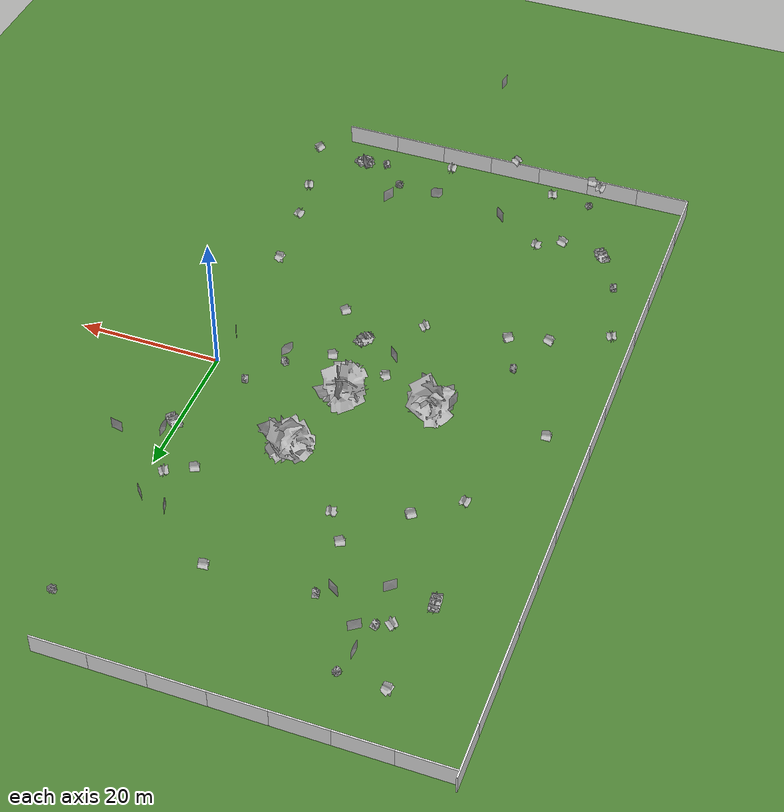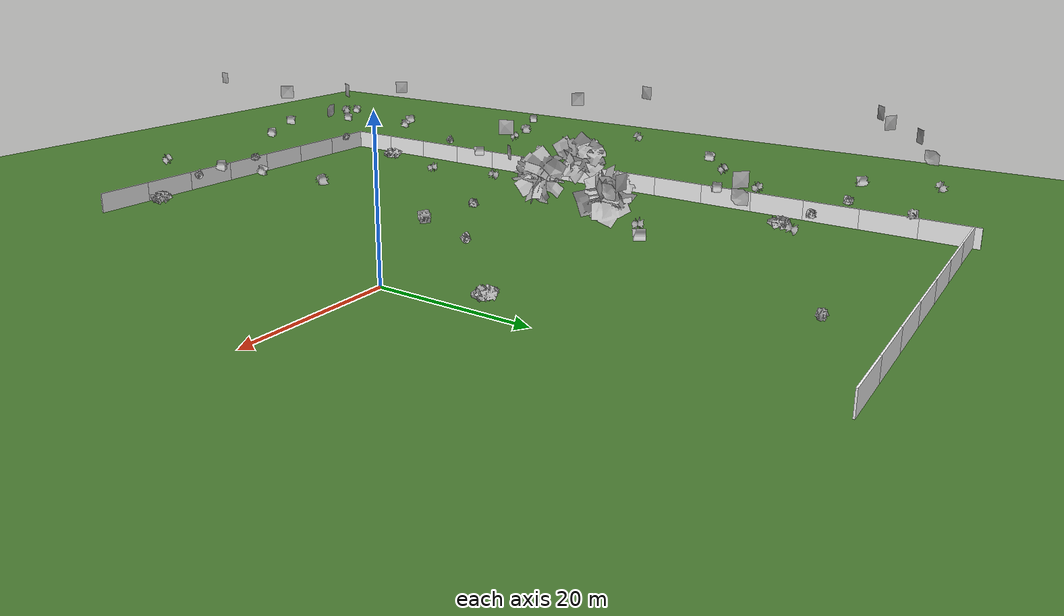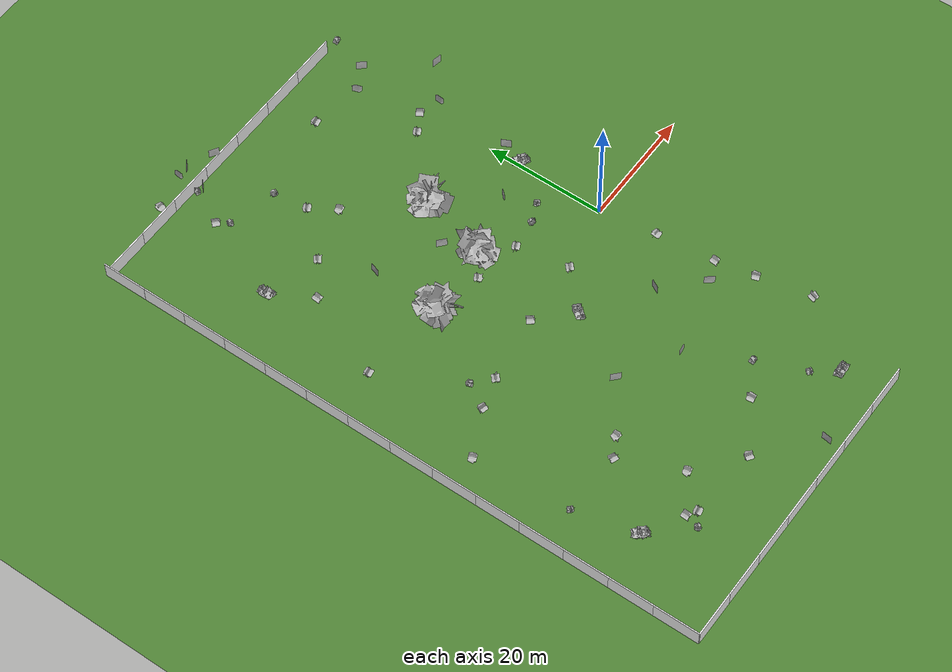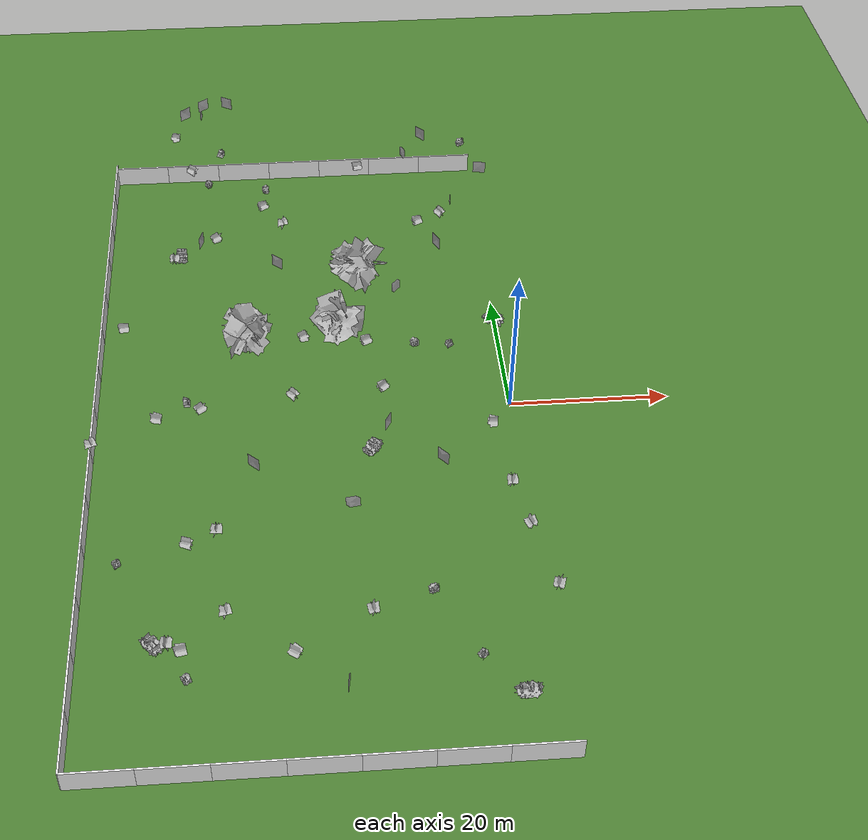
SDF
<sdf version="1.9">
 <world name="plant_forest">
  <model name="ground_plane">
   <static>true</static>
   <link name="link">
    <collision name="collision">
     <geometry><plane><normal>0 0 1</normal><size>110 110</size></plane></geometry>
    </collision>
    <visual name="visual">
     <geometry><plane><normal>0 0 1</normal><size>110 110</size></plane></geometry>
     <material>
      <ambient>0.3 0.5 0.2 1</ambient>
      <diffuse>0.3 0.5 0.2 1</diffuse>
      <specular>0.1 0.1 0.1 1</specular>
     </material>
     <plugin filename="ignition-gazebo-label-system" name="ignition::gazebo::systems::Label">
      <label>1</label>
     </plugin>
    </visual>
   </link>
  </model>
  <include>
   <name>tree_26</name>
   <uri>model://tree_01_2</uri>
   <pose>-11.0623 9.2053 0 0 0 2.9408</pose>
   <static>true</static>
  </include>
  <include>
   <name>tree_37</name>
   <uri>model://tree_01_2</uri>
   <pose>-39.7773 -1.3449 0 0 0 0.4349</pose>
   <static>true</static>
  </include>
  <include>
   <name>tree_43</name>
   <uri>model://tree_01_2</uri>
   <pose>-15.5438 8.4776 0 0 0 1.4459</pose>
   <static>true</static>
  </include>
  <include>
   <name>bush_3</name>
   <uri>model://bush_02</uri>
   <pose>-41.4220 -41.4758 0 0 0 5.4150</pose>
   <static>true</static>
  </include>
  <include>
   <name>bush_9</name>
   <uri>model://bush_01</uri>
   <pose>-4.0046 47.8516 0 0 0 6.2587</pose>
   <static>true</static>
  </include>
  <include>
   <name>bush_12</name>
   <uri>model://bush_02</uri>
   <pose>-5.9343 4.1489 0 0 0 1.9008</pose>
   <static>true</static>
  </include>
  <include>
   <name>bush_18</name>
   <uri>model://bush_01</uri>
   <pose>-39.1393 -7.3367 0 0 0 1.7384</pose>
   <static>true</static>
  </include>
  <include>
   <name>bush_19</name>
   <uri>model://bush_01</uri>
   <pose>-15.9786 -35.4413 0 0 0 6.1563</pose>
   <static>true</static>
  </include>
  <include>
   <name>bush_21</name>
   <uri>model://bush_01</uri>
   <pose>-37.2601 42.7249 0 0 0 4.3418</pose>
   <static>true</static>
  </include>
  <include>
   <name>bush_23</name>
   <uri>model://bush_02</uri>
   <pose>-6.7405 -43.9844 0 0 0 2.2912</pose>
   <static>true</static>
  </include>
  <include>
   <name>bush_25</name>
   <uri>model://bush_01</uri>
   <pose>-14.0469 5.7488 0 0 0 5.4960</pose>
   <static>true</static>
  </include>
  <include>
   <name>bush_28</name>
   <uri>model://bush_01</uri>
   <pose>-30.7814 40.7508 0 0 0 4.9159</pose>
   <static>true</static>
  </include>
  <include>
   <name>bush_33</name>
   <uri>model://bush_02</uri>
   <pose>-45.7282 -29.4595 0 0 0 2.0625</pose>
   <static>true</static>
  </include>
  <include>
   <name>bush_36</name>
   <uri>model://bush_01</uri>
   <pose>-36.9272 45.1585 0 0 0 1.1220</pose>
   <static>true</static>
  </include>
  <include>
   <name>flowers_5</name>
   <uri>model://flowers_03</uri>
   <pose>-9.0168 32.0376 0 0 0 1.9093</pose>
   <static>true</static>
  </include>
  <include>
   <name>flowers_9</name>
   <uri>model://flowers_03</uri>
   <pose>-39.0348 43.3920 0 0 0 1.4757</pose>
   <static>true</static>
  </include>
  <include>
   <name>flowers_10</name>
   <uri>model://flowers_03</uri>
   <pose>-26.4345 -28.8835 0 0 0 0.1535</pose>
   <static>true</static>
  </include>
  <include>
   <name>flowers_22</name>
   <uri>model://flowers_03</uri>
   <pose>-5.7722 20.5003 0 0 0 1.4734</pose>
   <static>true</static>
  </include>
  <include>
   <name>flowers_23</name>
   <uri>model://flowers_03</uri>
   <pose>-17.3079 3.8546 0 0 0 0.8694</pose>
   <static>true</static>
  </include>
  <include>
   <name>grass_0</name>
   <uri>model://grass_01</uri>
   <pose>-1.1300 -21.7982 0 0 0 3.0514</pose>
   <static>true</static>
  </include>
  <include>
   <name>grass_1</name>
   <uri>model://grass_02</uri>
   <pose>-15.7316 17.1976 0 0 0 2.5404</pose>
   <static>true</static>
  </include>
  <include>
   <name>grass_3</name>
   <uri>model://grass_03</uri>
   <pose>-45.4112 -10.1741 0 0 0 3.5462</pose>
   <static>true</static>
  </include>
  <include>
   <name>grass_4</name>
   <uri>model://grass_01</uri>
   <pose>-39.9410 -6.8532 0 0 0 5.4466</pose>
   <static>true</static>
  </include>
  <include>
   <name>grass_5</name>
   <uri>model://grass_01</uri>
   <pose>-43.1727 -11.6060 0 0 0 1.3299</pose>
   <static>true</static>
  </include>
  <include>
   <name>grass_6</name>
   <uri>model://grass_02</uri>
   <pose>-15.5999 36.4454 0 0 0 1.7483</pose>
   <static>true</static>
  </include>
  <include>
   <name>grass_7</name>
   <uri>model://grass_02</uri>
   <pose>-23.7819 -40.1370 0 0 0 0.1218</pose>
   <static>true</static>
  </include>
  <include>
   <name>grass_8</name>
   <uri>model://grass_03</uri>
   <pose>-42.9998 43.3843 0 0 0 1.4088</pose>
   <static>true</static>
  </include>
  <include>
   <name>grass_10</name>
   <uri>model://grass_01</uri>
   <pose>-28.8614 -46.0435 0 0 0 0.9574</pose>
   <static>true</static>
  </include>
  <include>
   <name>grass_11</name>
   <uri>model://grass_01</uri>
   <pose>-2.5381 -37.0186 0 0 0 5.9549</pose>
   <static>true</static>
  </include>
  <include>
   <name>grass_16</name>
   <uri>model://grass_03</uri>
   <pose>-28.9603 8.8414 0 0 0 5.2186</pose>
   <static>true</static>
  </include>
  <include>
   <name>grass_17</name>
   <uri>model://grass_01</uri>
   <pose>-38.2175 26.1582 0 0 0 5.3425</pose>
   <static>true</static>
  </include>
  <include>
   <name>grass_19</name>
   <uri>model://grass_01</uri>
   <pose>-14.6684 -6.8757 0 0 0 2.3284</pose>
   <static>true</static>
  </include>
  <include>
   <name>grass_21</name>
   <uri>model://grass_02</uri>
   <pose>-37.8683 44.2356 0 0 0 3.9935</pose>
   <static>true</static>
  </include>
  <include>
   <name>grass_23</name>
   <uri>model://grass_03</uri>
   <pose>-22.0721 29.5871 0 0 0 3.3814</pose>
   <static>true</static>
  </include>
  <include>
   <name>grass_24</name>
   <uri>model://grass_02</uri>
   <pose>-3.3721 31.2705 0 0 0 3.7226</pose>
   <static>true</static>
  </include>
  <include>
   <name>grass_26</name>
   <uri>model://grass_02</uri>
   <pose>-24.5891 -3.3880 0 0 0 3.8348</pose>
   <static>true</static>
  </include>
  <include>
   <name>grass_27</name>
   <uri>model://grass_02</uri>
   <pose>-15.7059 -0.5466 0 0 0 2.0421</pose>
   <static>true</static>
  </include>
  <include>
   <name>grass_28</name>
   <uri>model://grass_02</uri>
   <pose>-27.6365 28.5919 0 0 0 2.1384</pose>
   <static>true</static>
  </include>
  <include>
   <name>grass_30</name>
   <uri>model://grass_01</uri>
   <pose>-39.7812 21.1272 0 0 0 3.0698</pose>
   <static>true</static>
  </include>
  <include>
   <name>grass_32</name>
   <uri>model://grass_01</uri>
   <pose>-39.0669 -26.7267 0 0 0 4.3466</pose>
   <static>true</static>
  </include>
  <include>
   <name>grass_34</name>
   <uri>model://grass_02</uri>
   <pose>-7.1516 23.6098 0 0 0 2.0784</pose>
   <static>true</static>
  </include>
  <include>
   <name>grass_35</name>
   <uri>model://grass_03</uri>
   <pose>-4.4405 -18.5642 0 0 0 1.4485</pose>
   <static>true</static>
  </include>
  <include>
   <name>grass_36</name>
   <uri>model://grass_03</uri>
   <pose>-29.5119 -36.5227 0 0 0 3.3669</pose>
   <static>true</static>
  </include>
  <include>
   <name>grass_37</name>
   <uri>model://grass_03</uri>
   <pose>-30.2256 -27.2271 0 0 0 3.0423</pose>
   <static>true</static>
  </include>
  <include>
   <name>grass_40</name>
   <uri>model://grass_02</uri>
   <pose>-46.6418 3.2770 0 0 0 1.7235</pose>
   <static>true</static>
  </include>
  <include>
   <name>grass_42</name>
   <uri>model://grass_02</uri>
   <pose>-38.1516 -46.8225 0 0 0 1.7866</pose>
   <static>true</static>
  </include>
  <include>
   <name>grass_43</name>
   <uri>model://grass_02</uri>
   <pose>-5.7150 -30.3011 0 0 0 0.3228</pose>
   <static>true</static>
  </include>
  <include>
   <name>grass_44</name>
   <uri>model://grass_02</uri>
   <pose>-37.0476 -41.7270 0 0 0 3.0897</pose>
   <static>true</static>
  </include>
  <include>
   <name>clover_0</name>
   <uri>model://clover_05</uri>
   <pose>-42.2179 44.1704 0 0 0 0.6235</pose>
   <static>true</static>
  </include>
  <include>
   <name>clover_9</name>
   <uri>model://clover_04</uri>
   <pose>-36.0620 18.1131 0 0 0 4.3966</pose>
   <static>true</static>
  </include>
  <include>
   <name>clover_16</name>
   <uri>model://clover_05</uri>
   <pose>-6.1550 30.1675 0 0 0 6.0888</pose>
   <static>true</static>
  </include>
  <include>
   <name>clover_17</name>
   <uri>model://clover_04</uri>
   <pose>-14.5957 -16.0024 0 0 0 4.2106</pose>
   <static>true</static>
  </include>
  <include>
   <name>clover_22</name>
   <uri>model://clover_04</uri>
   <pose>-8.3282 -29.9921 0 0 0 2.2731</pose>
   <static>true</static>
  </include>
  <include>
   <name>clover_24</name>
   <uri>model://clover_05</uri>
   <pose>-35.4227 -20.3492 0 0 0 5.5345</pose>
   <static>true</static>
  </include>
  <include>
   <name>clover_25</name>
   <uri>model://clover_04</uri>
   <pose>-36.3431 45.4221 0 0 0 3.8257</pose>
   <static>true</static>
  </include>
  <include>
   <name>clover_27</name>
   <uri>model://clover_04</uri>
   <pose>-39.0519 47.2567 0 0 0 5.7361</pose>
   <static>true</static>
  </include>
  <include>
   <name>clover_30</name>
   <uri>model://clover_04</uri>
   <pose>-24.6018 4.9214 0 0 0 2.4101</pose>
   <static>true</static>
  </include>
  <include>
   <name>clover_33</name>
   <uri>model://clover_05</uri>
   <pose>-22.3514 -47.7537 0 0 0 4.5619</pose>
   <static>true</static>
  </include>
  <include>
   <name>clover_36</name>
   <uri>model://clover_05</uri>
   <pose>-11.7878 41.5538 0 0 0 5.4639</pose>
   <static>true</static>
  </include>
  <include>
   <name>clover_39</name>
   <uri>model://clover_04</uri>
   <pose>-10.9364 15.7141 0 0 0 5.1569</pose>
   <static>true</static>
  </include>
  <include>
   <name>hedge_0</name>
   <uri>model://hedge_01</uri>
   <pose>-0.4484 -44.4461 0 0 0 3.1560</pose>
   <static>true</static>
  </include>
  <include>
   <name>hedge_2</name>
   <uri>model://hedge_01</uri>
   <pose>-46.5266 -34.1611 0 0 0 5.4722</pose>
   <static>true</static>
  </include>
  <include>
   <name>hedge_3</name>
   <uri>model://hedge_01</uri>
   <pose>-40.8165 27.0264 0 0 0 1.6652</pose>
   <static>true</static>
  </include>
  <include>
   <name>hedge_10</name>
   <uri>model://hedge_01</uri>
   <pose>-19.8367 -12.0153 0 0 0 0.9146</pose>
   <static>true</static>
  </include>
  <include>
   <name>hedge_14</name>
   <uri>model://hedge_01</uri>
   <pose>-3.8812 16.0167 0 0 0 5.6480</pose>
   <static>true</static>
  </include>
  <include>
   <name>wall_s_0</name>
   <uri>model://cmu_grey_wall</uri>
   <pose>-48.25 -52.0 0 0 0 0</pose>
   <static>true</static>
  </include>
  <include>
   <name>wall_s_1</name>
   <uri>model://cmu_grey_wall</uri>
   <pose>-40.75 -52.0 0 0 0 0</pose>
   <static>true</static>
  </include>
  <include>
   <name>wall_s_2</name>
   <uri>model://cmu_grey_wall</uri>
   <pose>-33.25 -52.0 0 0 0 0</pose>
   <static>true</static>
  </include>
  <include>
   <name>wall_s_3</name>
   <uri>model://cmu_grey_wall</uri>
   <pose>-25.75 -52.0 0 0 0 0</pose>
   <static>true</static>
  </include>
  <include>
   <name>wall_s_4</name>
   <uri>model://cmu_grey_wall</uri>
   <pose>-18.25 -52.0 0 0 0 0</pose>
   <static>true</static>
  </include>
  <include>
   <name>wall_s_5</name>
   <uri>model://cmu_grey_wall</uri>
   <pose>-10.75 -52.0 0 0 0 0</pose>
   <static>true</static>
  </include>
  <include>
   <name>wall_s_6</name>
   <uri>model://cmu_grey_wall</uri>
   <pose>-3.25 -52.0 0 0 0 0</pose>
   <static>true</static>
  </include>
  <include>
   <name>wall_n_0</name>
   <uri>model://cmu_grey_wall</uri>
   <pose>-48.25 52.0 0 0 0 0</pose>
   <static>true</static>
  </include>
  <include>
   <name>wall_n_1</name>
   <uri>model://cmu_grey_wall</uri>
   <pose>-40.75 52.0 0 0 0 0</pose>
   <static>true</static>
  </include>
  <include>
   <name>wall_n_2</name>
   <uri>model://cmu_grey_wall</uri>
   <pose>-33.25 52.0 0 0 0 0</pose>
   <static>true</static>
  </include>
  <include>
   <name>wall_n_3</name>
   <uri>model://cmu_grey_wall</uri>
   <pose>-25.75 52.0 0 0 0 0</pose>
   <static>true</static>
  </include>
  <include>
   <name>wall_n_4</name>
   <uri>model://cmu_grey_wall</uri>
   <pose>-18.25 52.0 0 0 0 0</pose>
   <static>true</static>
  </include>
  <include>
   <name>wall_n_5</name>
   <uri>model://cmu_grey_wall</uri>
   <pose>-10.75 52.0 0 0 0 0</pose>
   <static>true</static>
  </include>
  <include>
   <name>wall_n_6</name>
   <uri>model://cmu_grey_wall</uri>
   <pose>-3.25 52.0 0 0 0 0</pose>
   <static>true</static>
  </include>
  <include>
   <name>wall_w_0</name>
   <uri>model://cmu_grey_wall</uri>
   <pose>-52.0 -48.25 0 0 0 1.5708</pose>
   <static>true</static>
  </include>
  <include>
   <name>wall_w_1</name>
   <uri>model://cmu_grey_wall</uri>
   <pose>-52.0 -40.75 0 0 0 1.5708</pose>
   <static>true</static>
  </include>
  <include>
   <name>wall_w_2</name>
   <uri>model://cmu_grey_wall</uri>
   <pose>-52.0 -33.25 0 0 0 1.5708</pose>
   <static>true</static>
  </include>
  <include>
   <name>wall_w_3</name>
   <uri>model://cmu_grey_wall</uri>
   <pose>-52.0 -25.75 0 0 0 1.5708</pose>
   <static>true</static>
  </include>
  <include>
   <name>wall_w_4</name>
   <uri>model://cmu_grey_wall</uri>
   <pose>-52.0 -18.25 0 0 0 1.5708</pose>
   <static>true</static>
  </include>
  <include>
   <name>wall_w_5</name>
   <uri>model://cmu_grey_wall</uri>
   <pose>-52.0 -10.75 0 0 0 1.5708</pose>
   <static>true</static>
  </include>
  <include>
   <name>wall_w_6</name>
   <uri>model://cmu_grey_wall</uri>
   <pose>-52.0 -3.25 0 0 0 1.5708</pose>
   <static>true</static>
  </include>
  <include>
   <name>wall_w_7</name>
   <uri>model://cmu_grey_wall</uri>
   <pose>-52.0 4.25 0 0 0 1.5708</pose>
   <static>true</static>
  </include>
  <include>
   <name>wall_w_8</name>
   <uri>model://cmu_grey_wall</uri>
   <pose>-52.0 11.75 0 0 0 1.5708</pose>
   <static>true</static>
  </include>
  <include>
   <name>wall_w_9</name>
   <uri>model://cmu_grey_wall</uri>
   <pose>-52.0 19.25 0 0 0 1.5708</pose>
   <static>true</static>
  </include>
  <include>
   <name>wall_w_10</name>
   <uri>model://cmu_grey_wall</uri>
   <pose>-52.0 26.75 0 0 0 1.5708</pose>
   <static>true</static>
  </include>
  <include>
   <name>wall_w_11</name>
   <uri>model://cmu_grey_wall</uri>
   <pose>-52.0 34.25 0 0 0 1.5708</pose>
   <static>true</static>
  </include>
  <include>
   <name>wall_w_12</name>
   <uri>model://cmu_grey_wall</uri>
   <pose>-52.0 41.75 0 0 0 1.5708</pose>
   <static>true</static>
  </include>
  <include>
   <name>wall_w_13</name>
   <uri>model://cmu_grey_wall</uri>
   <pose>-52.0 49.25 0 0 0 1.5708</pose>
   <static>true</static>
  </include>
 </world>
</sdf>
